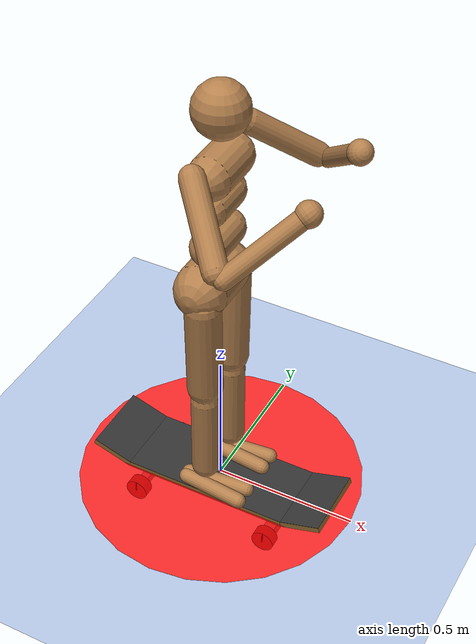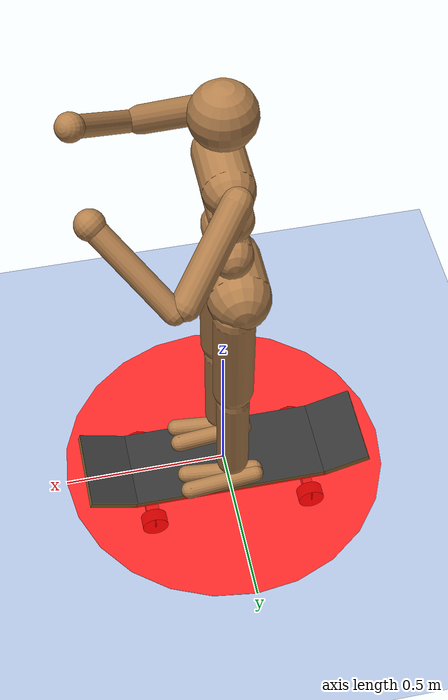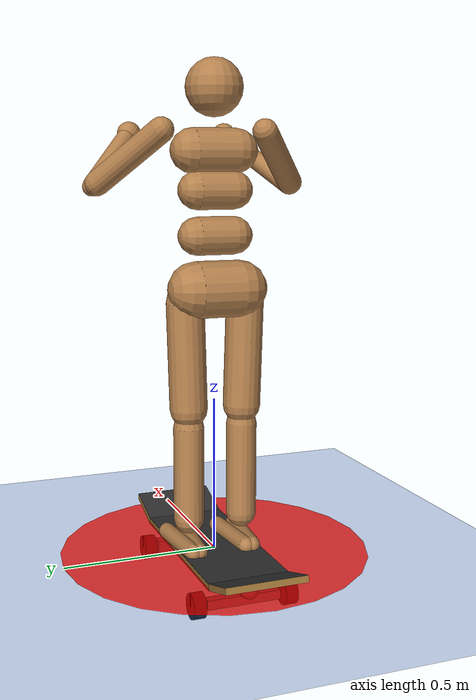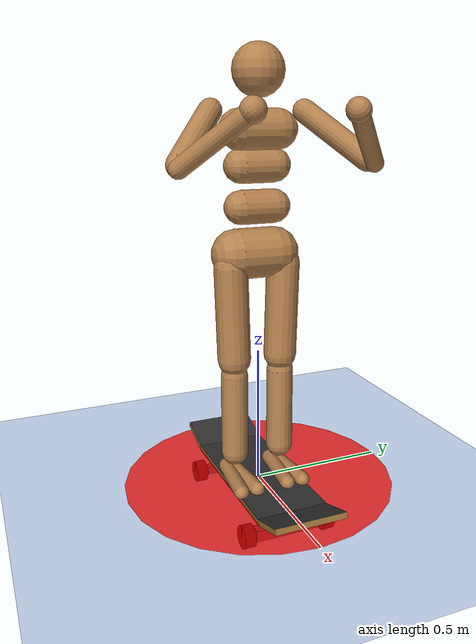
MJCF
<mujoco model="Humanoid Skateboard Steer">
  <include file="../../common.xml"/>
  <include file="../humanoid.xml" />
  <include file="./skateboard.xml" />
  <size memory="8M"/>

  <compiler autolimits="true" />

  <custom>
    <text name="task_transition" data="Push" />
    <numeric name="derivative_skip" data="1" />
    <numeric name="agent_planner" data="2" />
    <numeric name="agent_horizon" data="0.45" />
    <numeric name="agent_integrator" data="3" />
    <numeric name="agent_timestep" data="0.0125" />
    <numeric name="sampling_spline_points" data="8" />
    <numeric name="sampling_exploration" data="0.05" />
    <numeric name="sampling_representation" data="1" />
    <numeric name="gradient_spline_points" data="5" />
    <numeric name="ilqg_num_rollouts" data="8" />
    <numeric name="ilqg_regularization_type" data="1" />
    <numeric name="ilqg_representation" data="1" />
    <numeric name="residual_Tilt ratio" data="0.0 0 1.0" />
    <numeric name="residual_Heading clamp l" data="0.01 -3.14 3.14" />
    <numeric name="residual_Heading clamp k" data="1 -3.14 3.14" />
    <numeric name="residual_Velocity" data="2.5 -10 10" />
    <numeric name="residual_Amplitude_z" data="0.19 -1 1"/>
    <numeric name="residual_Amplitude_y" data="0.21 -1 1"/>
    <numeric name="residual_Frequency_z" data="1.00 -3 3"/>
    <numeric name="residual_Frequency_y" data="1.00 -3 3"/>
    <numeric name="residual_Phase_z" data="1.0 -1 1"/>
    <numeric name="residual_Phase_y" data="1.0 -1 1"/>
    <numeric name="residual_Offset_z" data="0.00 -1 1"/>
    <numeric name="residual_Offset_y" data="0.0 -1 1"/>
  </custom>

  <default>
    <default class="mocap_site">
      <site type="sphere" size="0.027" rgba="1 0 0 1" group="3" material="target"/>
    </default>
  </default>

  <option timestep="0.0125" integrator="implicitfast" cone="elliptic" />

  <worldbody>
    <body name="mocap[pelvis]" mocap="true">
      <site name="mocap[pelvis]" class="mocap_site" size="0.05" />
    </body>
    <body name="mocap[head]" mocap="true">
      <site name="mocap[head]" class="mocap_site" />
    </body>
    <body name="mocap[ltoe]" mocap="true">
      <site name="mocap[ltoe]" class="mocap_site" />
    </body>
    <body name="mocap[rtoe]" mocap="true">
      <site name="mocap[rtoe]" class="mocap_site" />
    </body>
    <body name="mocap[lheel]" mocap="true">
      <site name="mocap[lheel]" class="mocap_site" />
    </body>
    <body name="mocap[rheel]" mocap="true">
      <site name="mocap[rheel]" class="mocap_site" />
    </body>
    <body name="mocap[lknee]" mocap="true">
      <site name="mocap[lknee]" class="mocap_site" />
    </body>
    <body name="mocap[rknee]" mocap="true">
      <site name="mocap[rknee]" class="mocap_site" />
    </body>
    <body name="mocap[lhand]" mocap="true">
      <site name="mocap[lhand]" class="mocap_site" />
    </body>
    <body name="mocap[rhand]" mocap="true">
      <site name="mocap[rhand]" class="mocap_site" />
    </body>
    <body name="mocap[lelbow]" mocap="true">
      <site name="mocap[lelbow]" class="mocap_site" />
    </body>
    <body name="mocap[relbow]" mocap="true">
      <site name="mocap[relbow]" class="mocap_site" />
    </body>
    <body name="mocap[lshoulder]" mocap="true">
      <site name="mocap[lshoulder]" class="mocap_site" />
    </body>
    <body name="mocap[rshoulder]" mocap="true">
      <site name="mocap[rshoulder]" class="mocap_site" />
    </body>
    <body name="mocap[lhip]" mocap="true">
      <site name="mocap[lhip]" class="mocap_site" />
    </body>
    <body name="mocap[rhip]" mocap="true">
      <site name="mocap[rhip]" class="mocap_site" />
    </body>
    <body name="goal" mocap="true" >
      <geom type="cylinder" size="0.5 0.001" contype="0" conaffinity="0" rgba="1 0 0 0.8" group="2"/>
    </body>
  </worldbody>

  <sensor>
    <user name="Joint Vel." dim="21" user="0 0.001 0.0 0.01" />
    <user name="Control" dim="21" user="3 0.3 0 1.0 0.3" />

    <user name="Pos[avg-xy]" dim="2" user="6 100.0 0.0 100.0 0.1" />
    <user name="Pos[avg-z]" dim="1" user="6 100.0 0.0 100.0 0.1" />
    <user name="Pos[pelvis-xy]" dim="2" user="6 30.0 0.0 100.0 0.1" />
    <user name="Pos[pelvis-z]" dim="1" user="6 30.0 0.0 100.0 0.1" />
    <user name="Pos[ltoe]" dim="3" user="6 30.0 0.0 100.0 0.1" />
    <user name="Pos[rtoe]" dim="3" user="6 100.0 0.0 100.0 0.1" />
    <user name="Pos[lheel]" dim="3" user="6 30.0 0.0 100.0 0.1" />
    <user name="Pos[rheel]" dim="3" user="6 100.0 0.0 100.0 0.1" />
    <user name="Pos[hand]" dim="6" user="6 0.0 0.0 100.0 0.1" />
    <user name="Pos[lshoulder-xy]" dim="2" user="6 30.0 0.0 100.0 0.1" />
    <user name="Pos[lshoulder-z]" dim="1" user="6 30.0 0.0 100.0 0.1" />
    <user name="Pos[rshoulder-xy]" dim="2" user="6 30.0 0.0 100.0 0.1" />
    <user name="Pos[rshoulder-z]" dim="1" user="6 30.0 0.0 100.0 0.1" />
    <user name="Pos[lhip-xy]" dim="2" user="6 0.0 0.0 100.0 0.1" />
    <user name="Pos[lhip-z]" dim="1" user="6 0.0 0.0 100.0 0.1" />
    <user name="Pos[rhip-xy]" dim="2" user="6 0.0 0.0 100.0 0.1" />
    <user name="Pos[rhip-z]" dim="1" user="6 0.0 0.0 100.0 0.1" />

    <user name="Vel[root]" dim="3" user="6 0.0 0 1.0 0.3" />
    <user name="Vel[toe]" dim="6" user="6 0.0 0 1.0 0.3" />
    <user name="Vel[heel]" dim="6" user="6 0.0 0 1.0 0.3" />
    <user name="Vel[hand]" dim="6" user="6 0.0 0 1.0 0.3" />
    <user name="Vel[shoulder]" dim="6" user="6 0.0 0 1.0 0.3" />
    <user name="Vel[hip]" dim="6" user="6 0.0 0 1.0 0.3" />

    <!-- user sensors for feet on skateboard  -->
    <user name="Right Foot on Board xy" dim="2" user="2 0 0.0 100.0 0.05" />
    <user name="Right Foot on Board z" dim="1" user="2 0 0.0 100.0 0.05" />
    <user name="Left Foot on Board xy" dim="2" user="2 0 0.0 100.0 0.05" />
    <user name="Left Foot on Board z" dim="1" user="2 0 0.0 100.0 0.05" />

    <!-- user sensors for board heading and velocity -->
    <user name="Board Heading" dim="2" user="6 0 0 100 0.01" />
    <user name="Board Velocity Local x" dim="1" user="8 0 0 100.0 0.01" />
    <user name="Board Velocity Local y" dim="1" user="0 10 0 100" />
    <user name="Board Velocity Global z" dim="1" user="0 0 0 100" />
    <!-- user sensors for left foot contact force on ground -->
    <user name="Left Foot Force" dim="1" user="6 20 0.0 100.0 0.1" />
    <!-- user sensors for ComVel XY -->
    <user name="ComVel XY" dim="2" user="6 20 0.0 100.0 0.1" />

    <framepos name="trace0" objtype="body" objname="torso"/>
    <framepos name="trace1" objtype="body" objname="board-center"/>

    <!-- sites for tracking target foot position on board -->
    <framepos name="tracking_foot_left" objtype="site" objname="tracking[ltoe]"/>
    <framepos name="tracking_foot_right" objtype="site" objname="tracking[rtoe]"/>
    <framepos name="track-back-plate" objtype="site" objname="track-back-plate"/>
    <framepos name="track-tail" objtype="site" objname="track-tail"/>
    <framepos name="track-front-plate" objtype="site" objname="track-front-plate"/>

    <!-- sites for tracking body and board velocities -->
    <framelinvel name="torso_subtreelinvel" objtype="body" objname="torso" />
    <framelinvel name="skateboard_framelinvel" objtype="body" objname="skateboard"/>

    <framepos name="tracking_pos[pelvis]" objtype="site" objname="tracking[pelvis]" />
    <framepos name="tracking_pos[head]" objtype="site" objname="tracking[head]" />
    <framepos name="tracking_pos[ltoe]" objtype="site" objname="tracking[ltoe]" />
    <framepos name="tracking_pos[rtoe]" objtype="site" objname="tracking[rtoe]" />
    <framepos name="tracking_pos[lheel]" objtype="site" objname="tracking[lheel]" />
    <framepos name="tracking_pos[rheel]" objtype="site" objname="tracking[rheel]" />
    <framepos name="tracking_pos[lknee]" objtype="site" objname="tracking[lknee]" />
    <framepos name="tracking_pos[rknee]" objtype="site" objname="tracking[rknee]" />
    <framepos name="tracking_pos[lhand]" objtype="site" objname="tracking[lhand]" />
    <framepos name="tracking_pos[rhand]" objtype="site" objname="tracking[rhand]" />
    <framepos name="tracking_pos[lelbow]" objtype="site" objname="tracking[lelbow]" />
    <framepos name="tracking_pos[relbow]" objtype="site" objname="tracking[relbow]" />
    <framepos name="tracking_pos[lshoulder]" objtype="site" objname="tracking[lshoulder]" />
    <framepos name="tracking_pos[rshoulder]" objtype="site" objname="tracking[rshoulder]" />
    <framepos name="tracking_pos[lhip]" objtype="site" objname="tracking[lhip]" />
    <framepos name="tracking_pos[rhip]" objtype="site" objname="tracking[rhip]" />

    <framelinvel name="tracking_linvel[pelvis]" objtype="site" objname="tracking[pelvis]" />
    <framelinvel name="tracking_linvel[head]" objtype="site" objname="tracking[head]" />
    <framelinvel name="tracking_linvel[ltoe]" objtype="site" objname="tracking[ltoe]" />
    <framelinvel name="tracking_linvel[rtoe]" objtype="site" objname="tracking[rtoe]" />
    <framelinvel name="tracking_linvel[lheel]" objtype="site" objname="tracking[lheel]" />
    <framelinvel name="tracking_linvel[rheel]" objtype="site" objname="tracking[rheel]" />
    <framelinvel name="tracking_linvel[lknee]" objtype="site" objname="tracking[lknee]" />
    <framelinvel name="tracking_linvel[rknee]" objtype="site" objname="tracking[rknee]" />
    <framelinvel name="tracking_linvel[lhand]" objtype="site" objname="tracking[lhand]" />
    <framelinvel name="tracking_linvel[rhand]" objtype="site" objname="tracking[rhand]" />
    <framelinvel name="tracking_linvel[lelbow]" objtype="site" objname="tracking[lelbow]" />
    <framelinvel name="tracking_linvel[relbow]" objtype="site" objname="tracking[relbow]" />
    <framelinvel name="tracking_linvel[lshoulder]" objtype="site" objname="tracking[lshoulder]" />
    <framelinvel name="tracking_linvel[rshoulder]" objtype="site" objname="tracking[rshoulder]" />
    <framelinvel name="tracking_linvel[lhip]" objtype="site" objname="tracking[lhip]" />
    <framelinvel name="tracking_linvel[rhip]" objtype="site" objname="tracking[rhip]" />
  </sensor>
  <include file="./keyframes/push.xml" />
</mujoco>

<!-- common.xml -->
<mujoco>

    <visual>
        <headlight ambient=".4 .4 .4" diffuse=".8 .8 .8" specular="0.1 0.1 0.1"/>
        <map znear=".01"/>
        <quality shadowsize="2048"/>
        <global elevation="-15"/>
    </visual>

    <asset>
        <texture name="blue_grid" type="2d" builtin="checker" rgb1=".02 .14 .44" rgb2=".27 .55 1" width="300" height="300" mark="edge" markrgb="1 1 1"/>
        <material name="blue_grid" texture="blue_grid" texrepeat="1 1" texuniform="true" reflectance=".2"/>

        <texture name="grey_grid" type="2d" builtin="checker" rgb1=".26 .26 .26" rgb2=".6 .6 .6" width="300" height="300" mark="edge" markrgb="1 1 1"/>
        <material name="grey_grid" texture="grey_grid" texrepeat="1 1" texuniform="true" reflectance=".2"/>
        <texture name="skybox" type="skybox" builtin="gradient" rgb1=".66 .79 1" rgb2=".9 .91 .93" width="800" height="800"/>

        <material name="self" rgba=".7 .5 .3 1"/>
        <material name="self_default" rgba=".7 .5 .3 1"/>
        <material name="self_highlight" rgba="0 .5 .3 1"/>
        <material name="effector" rgba=".7 .4 .2 1"/>
        <material name="effector_default" rgba=".7 .4 .2 1"/>
        <material name="effector_highlight" rgba="0 .5 .3 1"/>
        <material name="decoration" rgba=".2 .6 .3 1"/>
        <material name="eye" rgba="0 .2 1 1"/>
        <material name="target" rgba=".6 .3 .3 1"/>
        <material name="target_default" rgba=".6 .3 .3 1"/>
        <material name="target_highlight" rgba=".6 .3 .3 .4"/>
        <material name="site" rgba=".5 .5 .5 .3"/>
    </asset>

    <size memory="1M"/>

    <statistic extent="0.4" center="0.3 0.1 0"/>

    <visual>
        <quality shadowsize="8192"/>
        <global azimuth="180" elevation="-30"/>
    </visual>

    <default>
        <geom friction="1.0"/>
    </default>

    <compiler angle="radian" autolimits="true"/>

    <asset>
        <mesh name="apple" file="../../shared_assets/apple/apple.obj" />
        <mesh name="apple_contact0" file="../../shared_assets/apple/contact0.stl"  />
        <mesh name="apple_contact1" file="../../shared_assets/apple/contact1.stl"  />

        <mesh name="doorknob" file="../../shared_assets/doorknob/doorknob.obj" />

        <mesh name="flashlight" file="../../shared_assets/flashlight/flashlight.obj" />
        <mesh name="flashlight_contact0" file="../../shared_assets/flashlight/contact0.stl"  />
        <mesh name="flashlight_contact1" file="../../shared_assets/flashlight/contact1.stl"  />

        <mesh name="hammer" file="../../shared_assets/hammer/hammer.obj" />
        <mesh name="hammer_contact0" file="../../shared_assets/hammer/contact0.stl"  />
        <mesh name="hammer_contact1" file="../../shared_assets/hammer/contact1.stl"  />

        <mesh name="phone" file="../../shared_assets/phone/phone.obj" />
        <mesh name="phone_contact0" file="../../shared_assets/phone/contact0.stl"  />
        <mesh name="phone_contact1" file="../../shared_assets/phone/contact1.stl"  />
        <mesh name="phone_contact2" file="../../shared_assets/phone/contact2.stl"  />

        <mesh name="stapler" file="../../shared_assets/stapler/stapler.obj" />
        <mesh name="stapler_contact0" file="../../shared_assets/stapler/contact0.stl"  />
        <mesh name="stapler_contact1" file="../../shared_assets/stapler/contact1.stl"  />
        <mesh name="stapler_contact2" file="../../shared_assets/stapler/contact2.stl"  />
        <mesh name="stapler_contact3" file="../../shared_assets/stapler/contact3.stl"  />
        <mesh name="stapler_contact4" file="../../shared_assets/stapler/contact4.stl"  />

        <mesh name="waterbottle" file="../../shared_assets/waterbottle/waterbottle.obj" />
        <mesh name="waterbottle_contact0" file="../../shared_assets/waterbottle/contact0.stl"  />
        <mesh name="waterbottle_contact1" file="../../shared_assets/waterbottle/contact1.stl"  />
    </asset>

</mujoco>

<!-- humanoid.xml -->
<mujoco model="Humanoid">

  <statistic extent="2" center="0 0 1"/>

  <default>
    <motor ctrlrange="-1 1" ctrllimited="true"/>
    <site size=".04" group="3"/>
    <default class="body">

      <!-- geoms -->
      <geom type="capsule" condim="1" friction=".7" solimp=".9 .99 .003" solref=".015 1" material="self"/>
      <default class="thigh">
        <geom size=".06"/>
      </default>
      <default class="shin">
        <geom fromto="0 0 0 0 0 -.3"  size=".049"/>
      </default>
      <default class="foot">
        <geom size=".027"/>
        <default class="foot1">
          <geom fromto="-.07 -.01 0 .14 -.03 0"/>
        </default>
        <default class="foot2">
          <geom fromto="-.07 .01 0 .14  .03 0"/>
        </default>
      </default>
      <default class="arm_upper">
        <geom size=".04"/>
      </default>
      <default class="arm_lower">
        <geom size=".031"/>
      </default>
      <default class="hand">
        <geom type="sphere" size=".04"/>
      </default>

      <!-- joints -->
      <joint type="hinge" damping=".2" stiffness="1" armature=".01" limited="true" solimplimit="0 .99 .01"/>
      <default class="joint_big">
        <joint damping="5" stiffness="10"/>
        <default class="hip_x">
          <joint range="-30 10"/>
        </default>
        <default class="hip_z">
          <joint range="-60 35"/>
        </default>
        <default class="hip_y">
          <joint axis="0 1 0" range="-150 20"/>
        </default>
        <default class="joint_big_stiff">
          <joint stiffness="20"/>
        </default>
      </default>
      <default class="knee">
        <joint pos="0 0 .02" axis="0 -1 0" range="-160 2"/>
      </default>
      <default class="ankle">
        <joint range="-50 50"/>
        <default class="ankle_y">
          <joint pos="0 0 .08" axis="0 1 0" stiffness="6"/>
        </default>
        <default class="ankle_x">
          <joint pos="0 0 .04" stiffness="3"/>
        </default>
      </default>
      <default class="shoulder">
        <joint range="-85 60"/>
      </default>
      <default class="elbow">
        <joint range="-100 50" stiffness="0"/>
      </default>

      <!-- tracking site -->
      <default class="tracking_site">
        <site type="sphere" size="0.027" rgba="1 1 1 1" group="3"/>
      </default>
    </default>
  </default>

  <worldbody>
    <geom name="floor" type="plane" conaffinity="1" size="50 50 .05" material="blue_grid"/>
    <body name="torso" pos="0 0 1.282" childclass="body">
      <light name="top" pos="0 0 2" mode="trackcom"/>
      <camera name="back" pos="-3 0 1" xyaxes="0 -1 0 1 0 2" mode="trackcom"/>
      <camera name="side" pos="0 -3 1" xyaxes="1 0 0 0 1 2" mode="trackcom"/>
      <freejoint name="root"/>
      <geom name="torso" fromto="0 -.07 0 0 .07 0" size=".07"/>
      <geom name="waist_upper" fromto="-.01 -.06 -.12 -.01 .06 -.12" size=".06"/>
      <body name="head" pos="0 0 .19">
        <geom name="head" type="sphere" size=".09"/>
        <site name="tracking[head]" class="tracking_site" pos="0.09 0 0" />
        <camera name="egocentric" pos=".09 0 0" xyaxes="0 -1 0 .1 0 1" fovy="80"/>
      </body>
      <body name="waist_lower" pos="-.01 0 -.26">
        <geom name="waist_lower" fromto="0 -.06 0 0 .06 0" size=".06"/>
        <joint name="abdomen_z" pos="0 0 .065" axis="0 0 1" range="-45 45" class="joint_big_stiff"/>
        <joint name="abdomen_y" pos="0 0 .065" axis="0 1 0" range="-75 30" class="joint_big"/>
        <body name="pelvis" pos="0 0 -.165">
          <site name="tracking[pelvis]" class="tracking_site" pos="0 0 0.075" size=".05" />
          <joint name="abdomen_x" pos="0 0 .1" axis="1 0 0" range="-35 35" class="joint_big"/>
          <geom name="butt" fromto="-.02 -.07 0 -.02 .07 0" size=".09"/>
          <body name="thigh_right" pos="0 -.1 -.04">
            <site name="tracking[rhip]" class="tracking_site" pos="0 0.025 0.025" />
            <joint name="hip_x_right" axis="1 0 0" class="hip_x"/>
            <joint name="hip_z_right" axis="0 0 1" class="hip_z"/>
            <joint name="hip_y_right" class="hip_y"/>
            <geom name="thigh_right" fromto="0 0 0 0 .01 -.34" class="thigh"/>
            <body name="shin_right" pos="0 .01 -.4">
              <joint name="knee_right" class="knee"/>
              <site name="tracking[rknee]" class="tracking_site" pos="0 0 0.05" />
              <geom name="shin_right" class="shin"/>
              <body name="foot_right" pos="0 0 -.39">
                <joint name="ankle_y_right" class="ankle_y"/>
                <joint name="ankle_x_right" class="ankle_x" axis="1 0 .5"/>
                <geom name="foot1_right" class="foot1"/>
                <geom name="foot2_right" class="foot2"/>
                <site name="foot_right" pos=".05 .03 0" type="sphere" size=".027"/>
                <site name="sp2" pos="-.07 0 0" type="sphere" size=".027"/>
                <site name="sp3" pos=".14 0 0" type="sphere" size=".027"/>
                <body name="heel_right" pos="-0.05 0 0.04">
                  <site name="tracking[rheel]" class="tracking_site" />
                </body>
                <body name="toe_right" pos="0.07 0 -0.01">
                  <site name="tracking[rtoe]" class="tracking_site" />
                </body>
              </body>
            </body>
          </body>
          <body name="thigh_left" pos="0 .1 -.04">
            <site name="tracking[lhip]" class="tracking_site" pos="0 -0.025 0.025" />
            <joint name="hip_x_left" axis="-1 0 0" class="hip_x"/>
            <joint name="hip_z_left" axis="0 0 -1" class="hip_z"/>
            <joint name="hip_y_left" class="hip_y"/>
            <geom name="thigh_left" fromto="0 0 0 0 -.01 -.34" class="thigh"/>
            <body name="shin_left" pos="0 -.01 -.4">
              <joint name="knee_left" class="knee"/>
              <site name="tracking[lknee]" class="tracking_site" pos="0 0 0.05" />
              <geom name="shin_left" fromto="0 0 0 0 0 -.3" class="shin"/>
              <body name="foot_left" pos="0 0 -.39">
                <joint name="ankle_y_left" class="ankle_y"/>
                <joint name="ankle_x_left" class="ankle_x" axis="-1 0 -.5"/>
                <geom name="foot1_left" class="foot1"/>
                <geom name="foot2_left" class="foot2"/>
                <site name="foot_left" pos=".05 -.03 0" type="sphere" size=".027"/>
                <site name="sp0" pos="-.07 0 0" type="sphere" size=".027"/>
                <site name="sp1" pos=".14 0 0" type="sphere" size=".027"/>
                <body name="heel_left" pos="-0.05 0 0.04">
                  <site name="tracking[lheel]" class="tracking_site" />
                </body>
                <body name="toe_left" pos="0.07 0 -0.01">
                  <site name="tracking[ltoe]" class="tracking_site" />
                </body>
              </body>
            </body>
          </body>
        </body>
      </body>
      <body name="upper_arm_right" pos="0 -.17 .06">
        <site name="tracking[rshoulder]" class="tracking_site" />
        <joint name="shoulder1_right" axis="2 1 1"  class="shoulder"/>
        <joint name="shoulder2_right" axis="0 -1 1" class="shoulder"/>
        <geom name="upper_arm_right" fromto="0 0 0 .16 -.16 -.16" class="arm_upper"/>
        <body name="lower_arm_right" pos=".18 -.18 -.18">
          <joint name="elbow_right" axis="0 -1 1" class="elbow"/>
          <site name="tracking[relbow]" class="tracking_site" />
          <site name="tracking[rhand]" class="tracking_site" pos="0.13 0.13 0.13" />
          <geom name="lower_arm_right" fromto=".01 .01 .01 .17 .17 .17" class="arm_lower"/>
          <body name="hand_right" pos=".18 .18 .18">
            <geom name="hand_right" zaxis="1 1 1" class="hand"/>
          </body>
        </body>
      </body>
      <body name="upper_arm_left" pos="0 .17 .06">
        <site name="tracking[lshoulder]" class="tracking_site" />
        <joint name="shoulder1_left" axis="-2 1 -1" class="shoulder"/>
        <joint name="shoulder2_left" axis="0 -1 -1"  class="shoulder"/>
        <geom name="upper_arm_left" fromto="0 0 0 .16 .16 -.16" class="arm_upper"/>
        <body name="lower_arm_left" pos=".18 .18 -.18">
          <joint name="elbow_left" axis="0 -1 -1" class="elbow"/>
          <site name="tracking[lelbow]" class="tracking_site" />
          <site name="tracking[lhand]" class="tracking_site" pos="0.13 -0.13 0.13" />
          <geom name="lower_arm_left" fromto=".01 -.01 .01 .17 -.17 .17" class="arm_lower"/>
          <body name="hand_left" pos=".18 -.18 .18">
            <geom name="hand_left" zaxis="1 -1 1" class="hand"/>
          </body>
        </body>
      </body>
    </body>
  </worldbody>

  <contact>
    <exclude body1="waist_lower" body2="thigh_right"/>
    <exclude body1="waist_lower" body2="thigh_left"/>
  </contact>

  <tendon>
    <fixed name="hamstring_right" limited="true" range="-0.3 2">
      <joint joint="hip_y_right" coef=".5"/>
      <joint joint="knee_right" coef="-.5"/>
    </fixed>
    <fixed name="hamstring_left" limited="true" range="-0.3 2">
      <joint joint="hip_y_left" coef=".5"/>
      <joint joint="knee_left" coef="-.5"/>
    </fixed>
  </tendon>

  <actuator>
    <motor name="abdomen_y"       gear="40"  joint="abdomen_y"/>
    <motor name="abdomen_z"       gear="40"  joint="abdomen_z"/>
    <motor name="abdomen_x"       gear="40"  joint="abdomen_x"/>
    <motor name="hip_x_right"     gear="40"  joint="hip_x_right"/>
    <motor name="hip_z_right"     gear="40"  joint="hip_z_right"/>
    <motor name="hip_y_right"     gear="120" joint="hip_y_right"/>
    <motor name="knee_right"      gear="100" joint="knee_right"/>
    <motor name="ankle_x_right"   gear="20"  joint="ankle_x_right"/>
    <motor name="ankle_y_right"   gear="20"  joint="ankle_y_right"/>
    <motor name="hip_x_left"      gear="40"  joint="hip_x_left"/>
    <motor name="hip_z_left"      gear="40"  joint="hip_z_left"/>
    <motor name="hip_y_left"      gear="120" joint="hip_y_left"/>
    <motor name="knee_left"       gear="100" joint="knee_left"/>
    <motor name="ankle_x_left"    gear="20"  joint="ankle_x_left"/>
    <motor name="ankle_y_left"    gear="20"  joint="ankle_y_left"/>
    <motor name="shoulder1_right" gear="20"  joint="shoulder1_right"/>
    <motor name="shoulder2_right" gear="20"  joint="shoulder2_right"/>
    <motor name="elbow_right"     gear="40"  joint="elbow_right"/>
    <motor name="shoulder1_left"  gear="20"  joint="shoulder1_left"/>
    <motor name="shoulder2_left"  gear="20"  joint="shoulder2_left"/>
    <motor name="elbow_left"      gear="40"  joint="elbow_left"/>
  </actuator>

</mujoco>

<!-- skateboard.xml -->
<mujoco model="skateboard">
  <default>
    <default class="skateboard">
      <default class="board">
        <geom solimp="0.5 0.99 1e-4" solref=".001 1" />
        <default class="grip">
          <site group="0" rgba="0.2 0.2 0.2 1" />
        </default>
        <default class="wood">
          <geom friction="1.5 0.005 0.0001" rgba="0.5859 0.4336 0.1992 1" />
        </default>
      </default>

      <default class="hanger-rotate">
        <joint type="hinge" range="-9 +9" damping="1" stiffness="30"/>
      </default>

      <default class="truck">
        <geom type="capsule" size="0.03" rgba="0.4414 0.4727 0.4922 1"/>
      </default>

      <default class="wheel">
        <geom type="cylinder" size="0.04 0.02" rgba="0.1 0.1 0.1 1" quat="1 1 0 0" condim="6" friction="1 0.005 0.0001"/>
        <joint type="hinge" axis="0 1 0" frictionloss="0.005"/>
      </default>

      <default class="wheel-marker">
        <site type="capsule" group="0" size="0.002 0.019" rgba="1 0 0 1"/>
      </default>
    </default>

    <default class="tracking_site_board">
      <site type="sphere" size="0.027" rgba="0 1 0 1" group="3"/>
    </default>
  </default>

  <worldbody>
    <body name="skateboard" pos="0 0 0">
      <freejoint/>

      <camera name="skateboard:back-targetbodycom" pos="-3 0 2" xyaxes="0 -1 0 1 0 2" mode="targetbodycom"/>
      <camera name="skateboard:back-trackcom" pos="-3 0 2" xyaxes="0 -1 0 1 0 2" mode="trackcom"/>
      <camera name="skateboard:side-targetbodycom" pos="0 -3 2" xyaxes="1 0 0 0 1 2" mode="targetbodycom"/>
      <camera name="skateboard:side-trackcom" pos="0 -3 2" xyaxes="1 0 0 0 1 2" mode="trackcom"/>
      <camera name="skateboard:far-chase-trackcom" pos="-6 -6 5" xyaxes="0.746 -0.666 0.000 0.283 0.317 0.905" mode="trackcom"/>

      <!-- board -->
      <body name="board" pos="0 0 0.005">
        <joint name="board-tilt" axis="-1 0 0" range="-18 18" damping="1" stiffness="30"/>
        <body name="board-center">
          <geom name="board-base" class="wood" type="box" size="0.3 0.13 0.01" />
          <site name="board-base-grip" class="grip" type="box" size="0.299 0.1299 0.00099" pos="0 0 0.01" />

          <site name="track-front-plate" class="tracking_site_board" pos="+0.2 0.04 0.025" />
          <site name="track-back-plate" class="tracking_site_board" pos="-0.2 0.04 0.025" />
        </body>
        <body name="board-nose" pos="+0.3685 0.0 0.0225" quat="-0.9659 0 0.15 0" >
          <geom name="board-nose" class="wood" type="box" size="0.075 0.13 0.01" />
          <site name="board-nose-grip" class="grip" type="box" size="0.07399 0.1299 0.00099" pos="+0.001 0 0.01" />
        </body>
        <body name="board-tail" pos="-0.3685 0.0 0.0225" quat="+0.9659 0 0.15 0" >
          <geom name="board-tail" class="wood" type="box" size="0.075 0.13 0.01" />
          <site name="board-tail-grip" class="grip" type="box" size="0.07399 0.1299 0.00099" pos="-0.001 0 0.01" />

          <site name="track-tail" class="tracking_site_board" pos="0.025 0.04 0.025" />
        </body>
      </body>
      <!-- trucks -->
      <geom  name="truck-nose" class="truck" fromto="0.20 0.0 -0.020 0.30 0.0 -0.020" />
      <geom  name="truck-tail" class="truck" fromto="-0.20 0.0 -0.020 -0.30 0.0 -0.020" />

      <!-- Baseplate -->
      <body name="baseplate-front" pos="0.25 0.0 -0.01">
        <!-- rotate -->
        <body name="kingpin-front" pos="0 0 -0.01">
          <geom type="capsule" fromto="0 0 0 0 0 -0.02" size="0.01" rgba="0.5 0.5 0.5 1"/>
          <joint name="hanger-rotate-front" class="hanger-rotate" axis="0 0 1" />
          <!-- Bushings and hanger -->
          <body name="bushings-and-hanger-front" pos="0 0 -0.02">
            <geom name="bottom-bushing-front" type="ellipsoid" size="0.03 0.03 0.01" rgba="1 0 0 1"/>
            <geom name="hanger-front" type="box" size="0.02 0.12 0.02" pos="0 0 -0.03" rgba="0.5 0.5 0.5 1"/>
            <!-- Wheels -->
            <body name="wheel-front-left" pos="0.0 0.15 -0.03" >
              <joint name="wheel-front-left" class="wheel"/>
              <geom name="wheel-front-left" class="wheel"/>
              <site name="wheel-marker-front-left" class="wheel-marker" pos="0 0.02 0.02"/>
            </body>
            <body name="wheel-front-right" pos="0.0 -0.15 -0.03">
              <joint name="wheel-front-right" class="wheel"/>
              <geom name="wheel-front-right" class="wheel"/>
              <site name="wheel-marker-front-right" class="wheel-marker" pos="0 -0.02 0.02"/>
            </body>
          </body>
        </body>
      </body>
      <!-- identical but for back truck -->
      <body name="baseplate-back" pos="-0.25 0.0 -0.01">
        <body name="kingpin-back" pos="0 0 -0.01">
          <geom type="capsule" fromto="0 0 0 0 0 -0.02" size="0.01" rgba="0.5 0.5 0.5 1"/>
          <joint name="hanger-rotate-back" class="hanger-rotate" axis="0 0 -1"/>
          <!-- Bushings and hanger -->
          <body name="bushings-and-hanger-back" pos="0 0 -0.02">
            <geom name="bottom-bushing-back" type="ellipsoid" size="0.03 0.03 0.01" rgba="1 0 0 1"/>
            <geom name="hanger-back" type="box" size="0.015 0.12 0.015" pos="0 0 -0.03" rgba="0.5 0.5 0.5 1"/>

            <!-- Wheels -->
            <body name="wheel-back-left" pos="0.0 0.15 -0.03">
              <joint name="wheel-back-left" class="wheel"/>
              <geom name="wheel-back-left" class="wheel"/>
              <site name="wheel-marker-back-left" class="wheel-marker" pos="0 0.02 0.02"/>
            </body>
            <body name="wheel-back-right" pos="0.0 -0.15 -0.03">
              <joint name="wheel-back-right" class="wheel"/>
              <geom name="wheel-back-right" class="wheel"/>
              <site name="wheel-marker-back-right" class="wheel-marker" pos="0 -0.02 0.02"/>
            </body>
          </body>
        </body>
      </body>
    </body>
  </worldbody>
  <!-- equality/joint between hanger-rotate and hanger-rotate-back -->
  <equality>
    <joint joint1="hanger-rotate-back" joint2="board-tilt" polycoef="0 2.0 0 0 0"/>
    <joint joint1="hanger-rotate-front" joint2="board-tilt" polycoef="0 2.0 0 0 0"/>
  </equality>
  <!-- exlude contact between all board parts,   trucks and kingpins and hangars -->
  <contact>
        <exclude body1="board" body2="baseplate-front"/>
        <exclude body1="board" body2="baseplate-back"/>
        <exclude body1="board" body2="wheel-front-left"/>
        <exclude body1="board" body2="wheel-front-right"/>
        <exclude body1="board" body2="wheel-back-left"/>
        <exclude body1="board" body2="wheel-back-right"/>
        <exclude body1="board" body2="kingpin-front"/>
        <exclude body1="board" body2="kingpin-back"/>
        <exclude body1="board" body2="bushings-and-hanger-front"/>
        <exclude body1="board" body2="bushings-and-hanger-back"/>

        <exclude body1="board-center" body2="baseplate-front"/>
        <exclude body1="board-center" body2="baseplate-back"/>
        <exclude body1="board-center" body2="wheel-front-left"/>
        <exclude body1="board-center" body2="wheel-front-right"/>
        <exclude body1="board-center" body2="wheel-back-left"/>
        <exclude body1="board-center" body2="wheel-back-right"/>
        <exclude body1="board-center" body2="kingpin-front"/>
        <exclude body1="board-center" body2="kingpin-back"/>
        <exclude body1="board-center" body2="bushings-and-hanger-front"/>
        <exclude body1="board-center" body2="bushings-and-hanger-back"/>

        <exclude body1="baseplate-front" body2="wheel-front-left"/>
        <exclude body1="baseplate-front" body2="wheel-front-right"/>
        <exclude body1="baseplate-front" body2="wheel-back-left"/>
        <exclude body1="baseplate-front" body2="wheel-back-right"/>
        <exclude body1="baseplate-back" body2="wheel-front-left"/>
        <exclude body1="baseplate-back" body2="wheel-front-right"/>
        <exclude body1="baseplate-back" body2="wheel-back-left"/>
        <exclude body1="baseplate-back" body2="wheel-back-right"/>
        <exclude body1="wheel-front-left" body2="wheel-front-right"/>
        <exclude body1="wheel-front-left" body2="wheel-back-left"/>
        <exclude body1="wheel-front-left" body2="wheel-back-right"/>
        <exclude body1="wheel-front-right" body2="wheel-back-left"/>
        <exclude body1="wheel-front-right" body2="wheel-back-right"/>
        <exclude body1="wheel-back-left" body2="wheel-back-right"/>
        <exclude body1="baseplate-front" body2="baseplate-back"/>
        <exclude body1="baseplate-front" body2="kingpin-front"/>
        <exclude body1="baseplate-front" body2="kingpin-back"/>
        <exclude body1="baseplate-front" body2="bushings-and-hanger-front"/>
        <exclude body1="baseplate-front" body2="bushings-and-hanger-back"/>
        <exclude body1="baseplate-back" body2="kingpin-front"/>
        <exclude body1="baseplate-back" body2="kingpin-back"/>
        <exclude body1="baseplate-back" body2="bushings-and-hanger-front"/>
        <exclude body1="baseplate-back" body2="bushings-and-hanger-back"/>
        <exclude body1="kingpin-front" body2="kingpin-back"/>
        <exclude body1="kingpin-front" body2="bushings-and-hanger-front"/>
        <exclude body1="kingpin-front" body2="bushings-and-hanger-back"/>
        <exclude body1="kingpin-back" body2="bushings-and-hanger-front"/>
        <exclude body1="kingpin-back" body2="bushings-and-hanger-back"/>
        <exclude body1="bushings-and-hanger-front" body2="bushings-and-hanger-back"/>
      </contact>
</mujoco>

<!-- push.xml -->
<mujoco>
  <keyframe>
    <key name="push_1" mpos='-0.336859 -0.037459 0.772378 -0.368455 0.040769 1.316371 -0.561351 0.003555 0.014710 -0.246394 0.016221 0.123136 -0.600391 -0.110781 0.062700 -0.250836 -0.103530 0.173535 -0.462841 0.175926 0.343484 -0.229421 0.248234 0.408885 -0.632744 0.293285 0.743780 -0.337577 0.244959 0.825553 -0.607862 0.140074 0.906898 -0.258740 0.052754 0.912396 -0.537430 -0.015805 1.167553 -0.202361 -0.066649 1.194822 -0.405435 -0.044408 0.669436 -0.259190 -0.062552 0.678705 0 0 0'
    qpos='-0.302594 0.212515 1.09784 0.795952 0.0181744 0.093693 0.597789 0.16409 -0.0943783 -0.160834 -0.105539 0.0302243 -0.903185 -1.91185 -0.879424 0.00295828 -0.128241 -0.0808905 -0.59189 -1.73499 -0.0987778 0.0569659 1.00425 0.0651209 -1.09008 0.368688 -0.17006 -1.59487 -0.215342 0.253972 0.0976176 -0.742893 0.000614184 -0.000794467 -0.669409 0.0763652 0.0767857 -77.5802 -76.5345 0.0786039 -78.4171 -79.5456'
    qvel="0 0 0 0 0 0 0 0 0 0 0 0 0 0 0 0 0 0 0 0 0 0 0 0 0 0 0 0 0 0 0 0 0 0 0 0 0 0 0 0"
    />

  </keyframe>
</mujoco>
